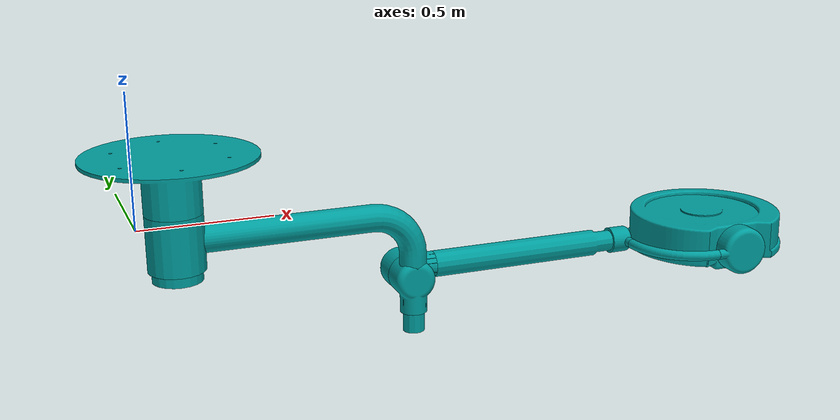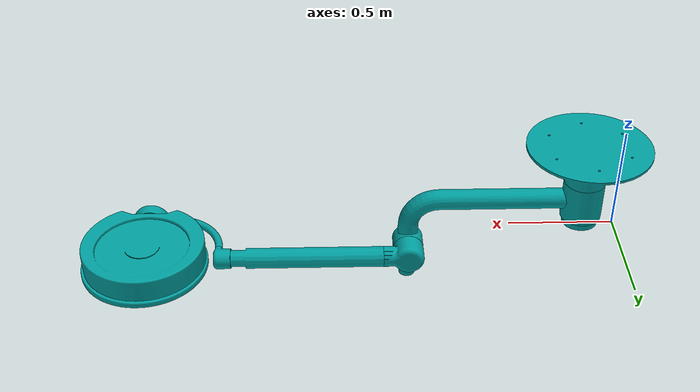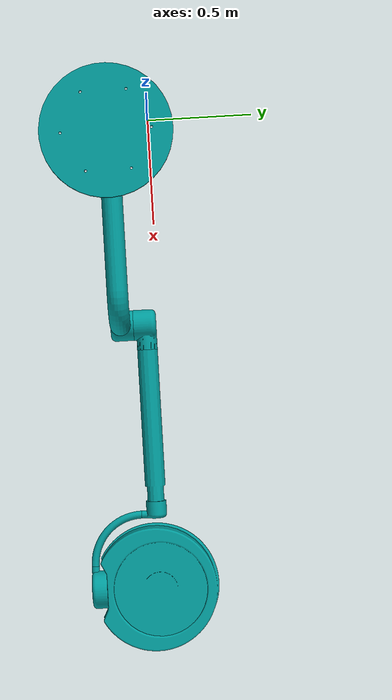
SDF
<sdf version='1.11'>
  <model name='surg_bot_description'>
    <link name='base_link'>
      <inertial>
        <pose>0.106427868445756 0.145639729120602 0.191167836670779 0 0 0</pose>
        <mass>15.865948579378999</mass>
        <inertia>
          <ixx>0.42579179318537502</ixx>
          <ixy>-2.50159888909237e-19</ixy>
          <ixz>8.8094735236897505e-19</ixz>
          <iyy>0.227325591684544</iyy>
          <iyz>-1.0360921171599e-16</iyz>
          <izz>0.42579179318537502</izz>
        </inertia>
      </inertial>
      <collision name='base_link_collision'>
        <pose>0 0 0 0 0 0</pose>
        <geometry>
          <mesh>
            <scale>1 1 1</scale>
            <uri>../meshes/base_link.STL</uri>
          </mesh>
        </geometry>
      </collision>
      <visual name='base_link_visual'>
        <pose>0 0 0 0 0 0</pose>
        <geometry>
          <mesh>
            <scale>1 1 1</scale>
            <uri>../meshes/base_link.STL</uri>
          </mesh>
        </geometry>
        <material>
          <diffuse>0 0.625 0.625 1</diffuse>
          <ambient>0 0.625 0.625 1</ambient>
        </material>
      </visual>
    </link>
    <joint name='Joint0' type='revolute'>
      <pose relative_to='base_link'>0.10643 -0.19117000000000001 0 1.5708 0 0</pose>
      <parent>base_link</parent>
      <child>Link1</child>
      <axis>
        <xyz>0 1 0</xyz>
        <limit>
          <lower>0</lower>
          <upper>0</upper>
          <effort>0</effort>
          <velocity>0</velocity>
        </limit>
        <dynamics>
          <spring_reference>0</spring_reference>
          <spring_stiffness>0</spring_stiffness>
        </dynamics>
      </axis>
    </joint>
    <link name='Link1'>
      <pose relative_to='Joint0'>0 0 0 0 0 0</pose>
      <inertial>
        <pose>0.46817999999999999 -0.054545000000000003 -1.4186000000000001e-06 0 0 0</pose>
        <mass>7.0612000000000004</mass>
        <inertia>
          <ixx>0.11459999999999999</ixx>
          <ixy>0.16994000000000001</ixy>
          <ixz>-7.7718999999999999e-07</ixz>
          <iyy>0.81276999999999999</iyy>
          <iyz>-2.7169000000000002e-07</iyz>
          <izz>0.90344999999999998</izz>
        </inertia>
      </inertial>
      <collision name='Link1_collision'>
        <pose>0 0 0 0 0 0</pose>
        <geometry>
          <mesh>
            <scale>1 1 1</scale>
            <uri>../meshes/Link1.STL</uri>
          </mesh>
        </geometry>
      </collision>
      <visual name='Link1_visual'>
        <pose>0 0 0 0 0 0</pose>
        <geometry>
          <mesh>
            <scale>1 1 1</scale>
            <uri>../meshes/Link1.STL</uri>
          </mesh>
        </geometry>
        <material>
          <diffuse>0 0.625 0.625 1</diffuse>
          <ambient>0 0.625 0.625 1</ambient>
        </material>
      </visual>
    </link>
    <joint name='Joint1' type='revolute'>
      <pose relative_to='Link1'>0.86360000000000003 -0.37436000000000003 0 3.1415926535897931 -1.5707926536359933 3.1415926535897931</pose>
      <parent>Link1</parent>
      <child>Link2</child>
      <axis>
        <xyz>0 1 0</xyz>
        <limit>
          <lower>0</lower>
          <upper>0</upper>
          <effort>0</effort>
          <velocity>0</velocity>
        </limit>
        <dynamics>
          <spring_reference>0</spring_reference>
          <spring_stiffness>0</spring_stiffness>
        </dynamics>
      </axis>
    </joint>
    <link name='Link2'>
      <pose relative_to='Joint1'>0 0 0 0 0 0</pose>
      <inertial>
        <pose>0.00032422000000000001 0.11973 1.1932000000000001e-07 0 0 0</pose>
        <mass>1.1307</mass>
        <inertia>
          <ixx>0.0054576</ixx>
          <ixy>-1.9953e-05</ixy>
          <ixz>3.5927999999999998e-09</ixz>
          <iyy>0.0036384</iyy>
          <iyz>-5.3272000000000004e-09</iyz>
          <izz>0.0045843999999999998</izz>
        </inertia>
      </inertial>
      <collision name='Link2_collision'>
        <pose>0 0 0 0 0 0</pose>
        <geometry>
          <mesh>
            <scale>1 1 1</scale>
            <uri>../meshes/Link2.STL</uri>
          </mesh>
        </geometry>
      </collision>
      <visual name='Link2_visual'>
        <pose>0 0 0 0 0 0</pose>
        <geometry>
          <mesh>
            <scale>1 1 1</scale>
            <uri>../meshes/Link2.STL</uri>
          </mesh>
        </geometry>
        <material>
          <diffuse>0 0.625 0.625 1</diffuse>
          <ambient>0 0.625 0.625 1</ambient>
        </material>
      </visual>
    </link>
    <joint name='Joint2' type='revolute'>
      <pose relative_to='Link2'>-0.050799999999999998 0.127 0 0 0 0</pose>
      <parent>Link2</parent>
      <child>Link3</child>
      <axis>
        <xyz>1 0 0</xyz>
        <limit>
          <lower>-inf</lower>
          <upper>inf</upper>
        </limit>
        <dynamics>
          <spring_reference>0</spring_reference>
          <spring_stiffness>0</spring_stiffness>
        </dynamics>
      </axis>
    </joint>
    <link name='Link3'>
      <pose relative_to='Joint2'>0 0 0 0 0 0</pose>
      <inertial>
        <pose>-0.076096999999999998 1.6976000000000001e-07 -0.0056433999999999998 0 0 0</pose>
        <mass>1.2444</mass>
        <inertia>
          <ixx>0.0057431000000000001</ixx>
          <ixy>-5.3975e-09</ixy>
          <ixz>3.6099000000000001e-05</ixz>
          <iyy>0.0049115000000000001</iyy>
          <iyz>-5.8176999999999999e-09</iyz>
          <izz>0.0039657</izz>
        </inertia>
      </inertial>
      <collision name='Link3_collision'>
        <pose>0 0 0 0 0 0</pose>
        <geometry>
          <mesh>
            <scale>1 1 1</scale>
            <uri>../meshes/Link3.STL</uri>
          </mesh>
        </geometry>
      </collision>
      <visual name='Link3_visual'>
        <pose>0 0 0 0 0 0</pose>
        <geometry>
          <mesh>
            <scale>1 1 1</scale>
            <uri>../meshes/Link3.STL</uri>
          </mesh>
        </geometry>
        <material>
          <diffuse>0 0.625 0.625 1</diffuse>
          <ambient>0 0.625 0.625 1</ambient>
        </material>
      </visual>
    </link>
    <joint name='Joint3' type='revolute'>
      <pose relative_to='Link3'>-0.076200000000000004 0 -0.050799999999999998 0 0 -3.1415853071795872</pose>
      <parent>Link3</parent>
      <child>Link4</child>
      <axis>
        <xyz>0 0 1</xyz>
        <limit>
          <lower>-inf</lower>
          <upper>inf</upper>
        </limit>
        <dynamics>
          <spring_reference>0</spring_reference>
          <spring_stiffness>0</spring_stiffness>
        </dynamics>
      </axis>
    </joint>
    <link name='Link4'>
      <pose relative_to='Joint3'>0 0 0 0 0 0</pose>
      <inertial>
        <pose>-8.0630000000000003e-15 -1.1102e-16 -0.4572 0 0 0</pose>
        <mass>4.0975999999999999</mass>
        <inertia>
          <ixx>0.24440999999999999</ixx>
          <ixy>-3.6765000000000002e-35</ixy>
          <ixz>-8.2378000000000005e-16</ixz>
          <iyy>0.24440999999999999</iyy>
          <iyz>-1.9484e-34</iyz>
          <izz>0.0072065000000000002</izz>
        </inertia>
      </inertial>
      <collision name='Link4_collision'>
        <pose>0 0 0 0 0 0</pose>
        <geometry>
          <mesh>
            <scale>1 1 1</scale>
            <uri>../meshes/Link4.STL</uri>
          </mesh>
        </geometry>
      </collision>
      <visual name='Link4_visual'>
        <pose>0 0 0 0 0 0</pose>
        <geometry>
          <mesh>
            <scale>1 1 1</scale>
            <uri>../meshes/Link4.STL</uri>
          </mesh>
        </geometry>
        <material>
          <diffuse>0 0.625 0.625 1</diffuse>
          <ambient>0 0.625 0.625 1</ambient>
        </material>
      </visual>
    </link>
    <joint name='Joint4' type='revolute'>
      <pose relative_to='Link4'>0 0 -0.83819999999999995 0 0 -3.1415853071795872</pose>
      <parent>Link4</parent>
      <child>Link5</child>
      <axis>
        <xyz>0 0 1</xyz>
        <limit>
          <lower>0</lower>
          <upper>0</upper>
          <effort>0</effort>
          <velocity>0</velocity>
        </limit>
        <dynamics>
          <spring_reference>0</spring_reference>
          <spring_stiffness>0</spring_stiffness>
        </dynamics>
      </axis>
    </joint>
    <link name='Link5'>
      <pose relative_to='Joint4'>0 0 0 0 0 0</pose>
      <inertial>
        <pose>0.0040654999999999997 -1.6223000000000001e-09 -0.048286999999999997 0 0 0</pose>
        <mass>0.28317999999999999</mass>
        <inertia>
          <ixx>0.00044292000000000002</ixx>
          <ixy>3.2676000000000002e-11</ixy>
          <ixz>2.2201e-05</ixz>
          <iyy>0.00050783000000000002</iyy>
          <iyz>1.6452999999999999e-11</iyz>
          <izz>0.00056888999999999996</izz>
        </inertia>
      </inertial>
      <collision name='Link5_collision'>
        <pose>0 0 0 0 0 0</pose>
        <geometry>
          <mesh>
            <scale>1 1 1</scale>
            <uri>../meshes/Link5.STL</uri>
          </mesh>
        </geometry>
      </collision>
      <visual name='Link5_visual'>
        <pose>0 0 0 0 0 0</pose>
        <geometry>
          <mesh>
            <scale>1 1 1</scale>
            <uri>../meshes/Link5.STL</uri>
          </mesh>
        </geometry>
        <material>
          <diffuse>0 0.625 0.625 1</diffuse>
          <ambient>0 0.625 0.625 1</ambient>
        </material>
      </visual>
    </link>
    <joint name='Joint5' type='revolute'>
      <pose relative_to='Link5'>0 0.01 0 0 0 0</pose>
      <parent>Link5</parent>
      <child>Link6</child>
      <axis>
        <xyz>0 0 1</xyz>
        <limit>
          <lower>-inf</lower>
          <upper>inf</upper>
        </limit>
        <dynamics>
          <spring_reference>0</spring_reference>
          <spring_stiffness>0</spring_stiffness>
        </dynamics>
      </axis>
    </joint>
    <link name='Link6'>
      <pose relative_to='Joint5'>0 0 0 0 0 0</pose>
      <inertial>
        <pose>0.23139000000000001 -0.01 -0.15837000000000001 0 0 0</pose>
        <mass>0.46788000000000002</mass>
        <inertia>
          <ixx>0.0030956999999999998</ixx>
          <ixy>-4.6540999999999998e-19</ixy>
          <ixz>0.0027323</ixz>
          <iyy>0.0061092000000000004</iyy>
          <iyz>6.7690000000000003e-19</iyz>
          <izz>0.0030956999999999998</izz>
        </inertia>
      </inertial>
      <collision name='Link6_collision'>
        <pose>0 0 0 0 0 0</pose>
        <geometry>
          <mesh>
            <scale>1 1 1</scale>
            <uri>../meshes/Link6.STL</uri>
          </mesh>
        </geometry>
      </collision>
      <visual name='Link6_visual'>
        <pose>0 0 0 0 0 0</pose>
        <geometry>
          <mesh>
            <scale>1 1 1</scale>
            <uri>../meshes/Link6.STL</uri>
          </mesh>
        </geometry>
        <material>
          <diffuse>0 0.625 0.625 1</diffuse>
          <ambient>0 0.625 0.625 1</ambient>
        </material>
      </visual>
    </link>
    <joint name='Joint6' type='revolute'>
      <pose relative_to='Link6'>0.34214 -0.028375000000000001 -0.41803000000000001 0 0 -3.1415853071795872</pose>
      <parent>Link6</parent>
      <child>Link7</child>
      <axis>
        <xyz>0 0 1</xyz>
        <limit>
          <lower>-inf</lower>
          <upper>inf</upper>
        </limit>
        <dynamics>
          <spring_reference>0</spring_reference>
          <spring_stiffness>0</spring_stiffness>
        </dynamics>
      </axis>
    </joint>
    <link name='Link7'>
      <pose relative_to='Joint6'>0 0 0 0 0 0</pose>
      <inertial>
        <pose>0.024087000000000001 -0.018374999999999999 -0.013114000000000001 0 0 0</pose>
        <mass>1.1658999999999999</mass>
        <inertia>
          <ixx>0.0056192000000000004</ixx>
          <ixy>-5.5561000000000002e-11</ixy>
          <ixz>1.1617000000000001e-05</ixz>
          <iyy>0.0032147</iyy>
          <iyz>4.4319e-10</iyz>
          <izz>0.0030184999999999999</izz>
        </inertia>
      </inertial>
      <collision name='Link7_collision'>
        <pose>0 0 0 0 0 0</pose>
        <geometry>
          <mesh>
            <scale>1 1 1</scale>
            <uri>../meshes/Link7.STL</uri>
          </mesh>
        </geometry>
      </collision>
      <visual name='Link7_visual'>
        <pose>0 0 0 0 0 0</pose>
        <geometry>
          <mesh>
            <scale>1 1 1</scale>
            <uri>../meshes/Link7.STL</uri>
          </mesh>
        </geometry>
        <material>
          <diffuse>0 0.625 0.625 1</diffuse>
          <ambient>0 0.625 0.625 1</ambient>
        </material>
      </visual>
    </link>
    <joint name='Joint7' type='revolute'>
      <pose relative_to='Link7'>0.044276000000000003 -0.018374999999999999 -0.014756 0 0 0</pose>
      <parent>Link7</parent>
      <child>Lamp</child>
      <axis>
        <xyz>1 0 0</xyz>
        <limit>
          <lower>0</lower>
          <upper>0</upper>
          <effort>0</effort>
          <velocity>0</velocity>
        </limit>
        <dynamics>
          <spring_reference>0</spring_reference>
          <spring_stiffness>0</spring_stiffness>
        </dynamics>
      </axis>
    </joint>
    <link name='Lamp'>
      <pose relative_to='Joint7'>0 0 0 0 0 0</pose>
      <inertial>
        <pose>0.28275 -0.0045900000000000003 -0.00031991000000000002 0 0 0</pose>
        <mass>44.076000000000001</mass>
        <inertia>
          <ixx>1.1399999999999999</ixx>
          <ixy>0.00042379000000000001</ixy>
          <ixz>1.2264e-05</ixz>
          <iyy>2.0156000000000001</iyy>
          <iyz>0.00063168000000000002</iyz>
          <izz>1.0565</izz>
        </inertia>
      </inertial>
      <collision name='Lamp_collision'>
        <pose>0 0 0 0 0 0</pose>
        <geometry>
          <mesh>
            <scale>1 1 1</scale>
            <uri>../meshes/Lamp.STL</uri>
          </mesh>
        </geometry>
      </collision>
      <visual name='Lamp_visual'>
        <pose>0 0 0 0 0 0</pose>
        <geometry>
          <mesh>
            <scale>1 1 1</scale>
            <uri>../meshes/Lamp.STL</uri>
          </mesh>
        </geometry>
        <material>
          <diffuse>0 0.625 0.625 1</diffuse>
          <ambient>0 0.625 0.625 1</ambient>
        </material>
      </visual>
    </link>
  </model>
</sdf>
